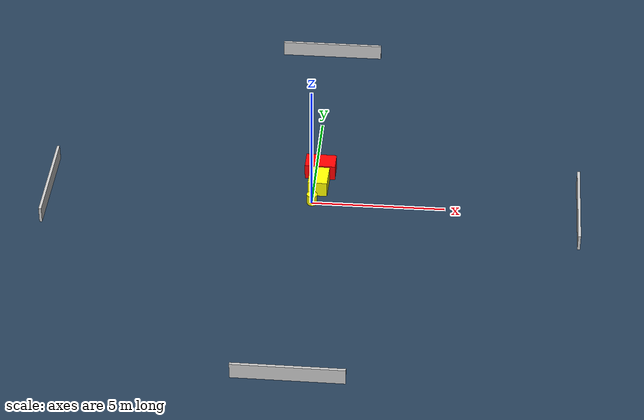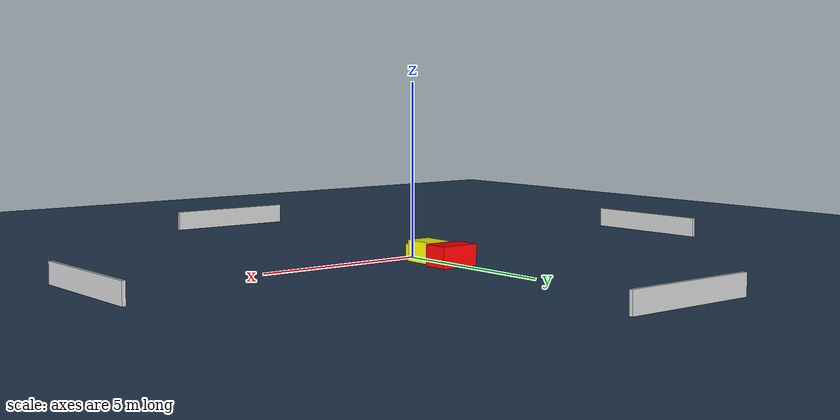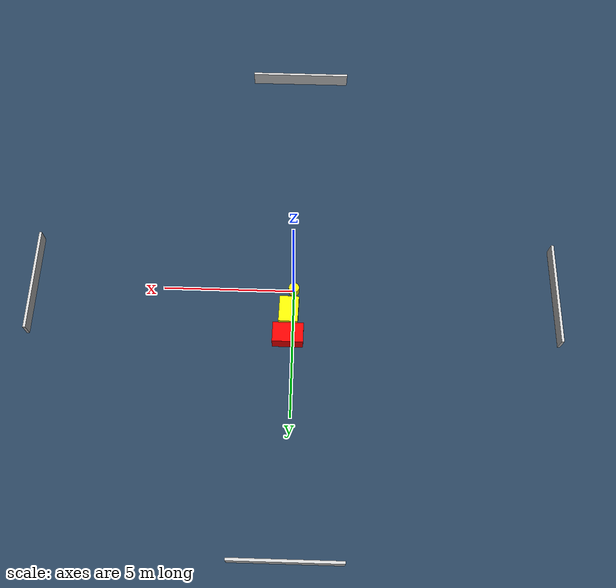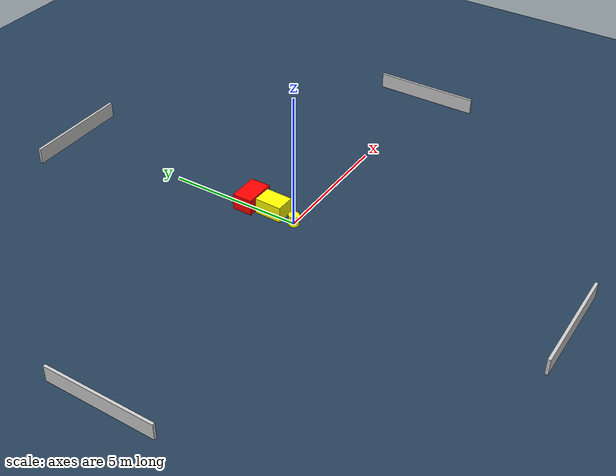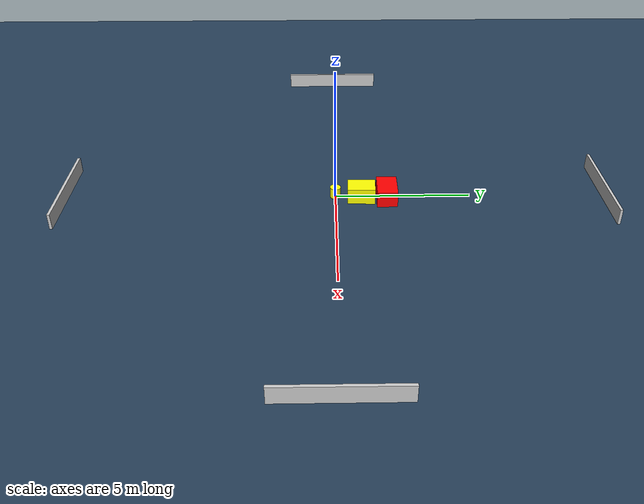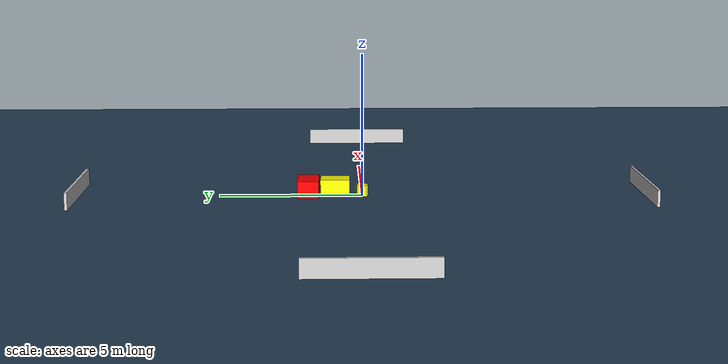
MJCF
<?xml version="1.0" ?>
<mujoco model="generated_environment">
  <option timestep="0.01" integrator="RK4" cone="elliptic"/>
  <default>
    <geom density="1"/>
  </default>
  <asset>
    <texture builtin="gradient" height="3072" name="skybox" rgb1="0.3 0.5 0.7" rgb2="0 0 0" type="skybox" width="512"/>
    <texture builtin="checker" height="300" name="groundplane" rgb1="0.2 0.3 0.4" rgb2="0.1 0.2 0.3" type="2d" width="300"/>
    <material name="groundplane" reflectance="0.2" texrepeat="5 5" texture="groundplane"/>
  </asset>
  <worldbody>
    <light dir="0 0 -1" directional="true" pos="0 0 1.5"/>
    <geom condim="3" friction="0.5 0.005 0.001" material="groundplane" name="floor" pos="0 0 0" size="0 0 0.05" type="plane"/>
    <body name="walls">
      <geom name="wall_1" condim="4" pos="-10.0 0.0 0.3" rgba="0.800000011920929 0.800000011920929 0.800000011920929 1.0" size="0.05 2.0 0.3" type="box"/>
      <geom name="wall_2" condim="4" pos="10.0 0.0 0.3" rgba="0.800000011920929 0.800000011920929 0.800000011920929 1.0" size="0.05 2.0 0.3" type="box"/>
      <geom name="wall_3" condim="4" pos="0.0 -10.0 0.3" rgba="0.800000011920929 0.800000011920929 0.800000011920929 1.0" size="2.0 0.05 0.3" type="box"/>
      <geom name="wall_4" condim="4" pos="0.0 10.0 0.3" rgba="0.800000011920929 0.800000011920929 0.800000011920929 1.0" size="2.0 0.05 0.3" type="box"/>
    </body>
    <body name="robot">
      <joint name="joint_x" type="slide" pos="0 0 0" axis="1 0 0"/>
      <joint name="joint_y" type="slide" pos="0 0 0" axis="0 1 0"/>
      <geom name="robot" type="cylinder" pos="0.0 0.0 0.2" size="0.2 0.2 0.0" mass="5.0" friction="1.0 0.005 0.0001" condim="4" rgba="1.0 1.0 0.0 1.0"/>
    </body>
    <body name="obstacle_1_movable">
      <geom name="obstacle_1_movable" condim="4" pos="0.17321614662819862 0.9596116616007517 0.3" euler="0 0 268.4185557766269" friction="0.0 0.005 0.001" rgba="1.0 1.0 0.0 1.0" size="0.5098248128290128 0.36317478546716264 0.3" type="box" mass="0.1"/>
      <joint type="free"/>
    </body>
    <body name="obstacle_2_static">
      <geom name="obstacle_2_static" condim="4" pos="0.17649577590271898 1.9023413101956013 0.3" euler="0 0 179.31382479772614" friction="0.0 0.005 0.001" rgba="1.0 0.0 0.0 1.0" size="0.5776866674672709 0.37630255267558543 0.3" type="box"/>
    </body>
  </worldbody>
  <actuator>
    <motor name="actuator_x" joint="joint_x" gear="1" ctrlrange="-1 1"/>
    <motor name="actuator_y" joint="joint_y" gear="1" ctrlrange="-1 1"/>
  </actuator>
</mujoco>
